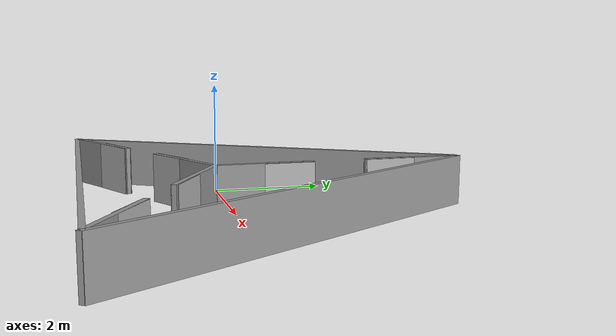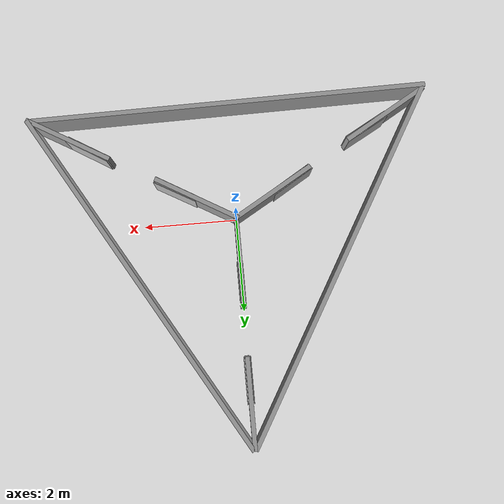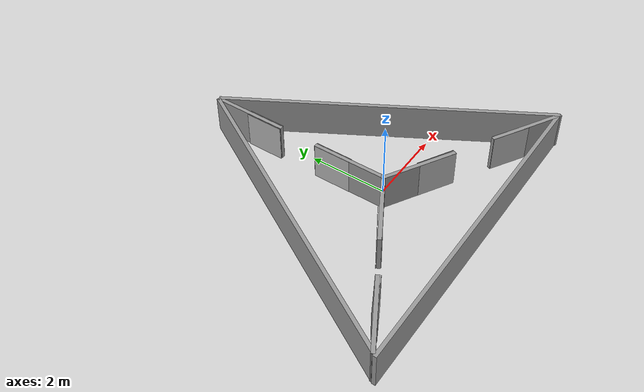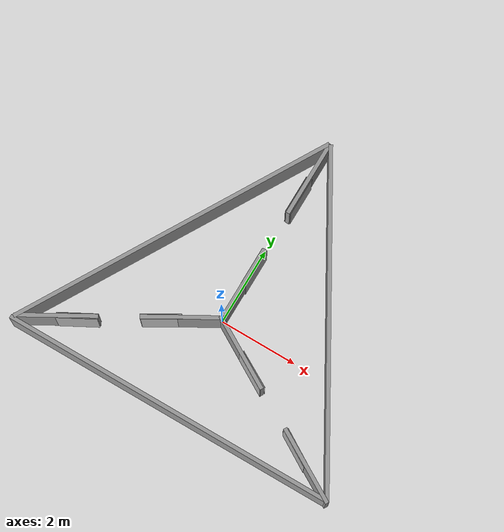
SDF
<?xml version='1.0'?>
<sdf version='1.7'>
  <model name='3_room_tagged'>
    <link name='link_1'>
      <inertial>
        <mass>1</mass>
        <inertia>
          <ixx>0.166667</ixx>
          <ixy>0</ixy>
          <ixz>0</ixz>
          <iyy>0.166667</iyy>
          <iyz>0</iyz>
          <izz>0.166667</izz>
        </inertia>
        <pose>0 0 0 0 -0 0</pose>
      </inertial>
      <pose>-0.000424 0.947771 0 0 -0 0</pose>
      <gravity>1</gravity>
      <self_collide>0</self_collide>
      <kinematic>0</kinematic>
      <enable_wind>0</enable_wind>
      <visual name='visual'>
        <pose>0 0 0 0 -0 0</pose>
        <geometry>
          <box>
            <size>0.1 2 1</size>
          </box>
        </geometry>
        <material>
          <lighting>1</lighting>
          <script>
            <uri>file://media/materials/scripts/gazebo.material</uri>
            <name>Gazebo/Grey</name>
          </script>
          <shader type='pixel'>
            <normal_map>__default__</normal_map>
          </shader>
          <ambient>0.3 0.3 0.3 1</ambient>
          <diffuse>0.7 0.7 0.7 1</diffuse>
          <specular>0.01 0.01 0.01 1</specular>
          <emissive>0 0 0 1</emissive>
        </material>
        <transparency>0</transparency>
        <cast_shadows>1</cast_shadows>
      </visual>
      <collision name='collision'>
        <laser_retro>0</laser_retro>
        <max_contacts>10</max_contacts>
        <pose>0 0 0 0 -0 0</pose>
        <geometry>
          <box>
            <size>0.1 2 1</size>
          </box>
        </geometry>
        <surface>
          <friction>
            <ode>
              <mu>1</mu>
              <mu2>1</mu2>
              <fdir1>0 0 0</fdir1>
              <slip1>0</slip1>
              <slip2>0</slip2>
            </ode>
            <torsional>
              <coefficient>1</coefficient>
              <patch_radius>0</patch_radius>
              <surface_radius>0</surface_radius>
              <use_patch_radius>1</use_patch_radius>
              <ode>
                <slip>0</slip>
              </ode>
            </torsional>
          </friction>
          <bounce>
            <restitution_coefficient>0</restitution_coefficient>
            <threshold>1e+06</threshold>
          </bounce>
          <contact>
            <collide_without_contact>0</collide_without_contact>
            <collide_without_contact_bitmask>1</collide_without_contact_bitmask>
            <collide_bitmask>1</collide_bitmask>
            <ode>
              <soft_cfm>0</soft_cfm>
              <soft_erp>0.2</soft_erp>
              <kp>1e+13</kp>
              <kd>1</kd>
              <max_vel>0.01</max_vel>
              <min_depth>0</min_depth>
            </ode>
            <bullet>
              <split_impulse>1</split_impulse>
              <split_impulse_penetration_threshold>-0.01</split_impulse_penetration_threshold>
              <soft_cfm>0</soft_cfm>
              <soft_erp>0.2</soft_erp>
              <kp>1e+13</kp>
              <kd>1</kd>
            </bullet>
          </contact>
        </surface>
      </collision>
    </link>
    <link name='link_1_clone'>
      <inertial>
        <mass>1</mass>
        <inertia>
          <ixx>0.166667</ixx>
          <ixy>0</ixy>
          <ixz>0</ixz>
          <iyy>0.166667</iyy>
          <iyz>0</iyz>
          <izz>0.166667</izz>
        </inertia>
        <pose>0 0 0 0 -0 0</pose>
      </inertial>
      <pose>0.810044 -0.484232 0.000592 0 -0 1.0472</pose>
      <gravity>1</gravity>
      <self_collide>0</self_collide>
      <kinematic>0</kinematic>
      <enable_wind>0</enable_wind>
      <visual name='visual'>
        <pose>0 0 0 0 -0 0</pose>
        <geometry>
          <box>
            <size>0.1 2 1</size>
          </box>
        </geometry>
        <material>
          <lighting>1</lighting>
          <script>
            <uri>file://media/materials/scripts/gazebo.material</uri>
            <name>Gazebo/Grey</name>
          </script>
          <shader type='pixel'>
            <normal_map>__default__</normal_map>
          </shader>
          <ambient>0.3 0.3 0.3 1</ambient>
          <diffuse>0.7 0.7 0.7 1</diffuse>
          <specular>0.01 0.01 0.01 1</specular>
          <emissive>0 0 0 1</emissive>
        </material>
        <transparency>0</transparency>
        <cast_shadows>1</cast_shadows>
      </visual>
      <collision name='collision'>
        <laser_retro>0</laser_retro>
        <max_contacts>10</max_contacts>
        <pose>0 0 0 0 -0 0</pose>
        <geometry>
          <box>
            <size>0.1 2 1</size>
          </box>
        </geometry>
        <surface>
          <friction>
            <ode>
              <mu>1</mu>
              <mu2>1</mu2>
              <fdir1>0 0 0</fdir1>
              <slip1>0</slip1>
              <slip2>0</slip2>
            </ode>
            <torsional>
              <coefficient>1</coefficient>
              <patch_radius>0</patch_radius>
              <surface_radius>0</surface_radius>
              <use_patch_radius>1</use_patch_radius>
              <ode>
                <slip>0</slip>
              </ode>
            </torsional>
          </friction>
          <bounce>
            <restitution_coefficient>0</restitution_coefficient>
            <threshold>1e+06</threshold>
          </bounce>
          <contact>
            <collide_without_contact>0</collide_without_contact>
            <collide_without_contact_bitmask>1</collide_without_contact_bitmask>
            <collide_bitmask>1</collide_bitmask>
            <ode>
              <soft_cfm>0</soft_cfm>
              <soft_erp>0.2</soft_erp>
              <kp>1e+13</kp>
              <kd>1</kd>
              <max_vel>0.01</max_vel>
              <min_depth>0</min_depth>
            </ode>
            <bullet>
              <split_impulse>1</split_impulse>
              <split_impulse_penetration_threshold>-0.01</split_impulse_penetration_threshold>
              <soft_cfm>0</soft_cfm>
              <soft_erp>0.2</soft_erp>
              <kp>1e+13</kp>
              <kd>1</kd>
            </bullet>
          </contact>
        </surface>
      </collision>
    </link>
    <link name='link_1_clone_0'>
      <inertial>
        <mass>1</mass>
        <inertia>
          <ixx>0.166667</ixx>
          <ixy>0</ixy>
          <ixz>0</ixz>
          <iyy>0.166667</iyy>
          <iyz>0</iyz>
          <izz>0.166667</izz>
        </inertia>
        <pose>0 0 0 0 -0 0</pose>
      </inertial>
      <pose>-0.820906 -0.471986 -0 -0 -0 -1.0472</pose>
      <gravity>1</gravity>
      <self_collide>0</self_collide>
      <kinematic>0</kinematic>
      <enable_wind>0</enable_wind>
      <visual name='visual'>
        <pose>0 0 0 0 -0 0</pose>
        <geometry>
          <box>
            <size>0.1 2 1</size>
          </box>
        </geometry>
        <material>
          <lighting>1</lighting>
          <script>
            <uri>file://media/materials/scripts/gazebo.material</uri>
            <name>Gazebo/Grey</name>
          </script>
          <shader type='pixel'>
            <normal_map>__default__</normal_map>
          </shader>
          <ambient>0.3 0.3 0.3 1</ambient>
          <diffuse>0.7 0.7 0.7 1</diffuse>
          <specular>0.01 0.01 0.01 1</specular>
          <emissive>0 0 0 1</emissive>
        </material>
        <transparency>0</transparency>
        <cast_shadows>1</cast_shadows>
      </visual>
      <collision name='collision'>
        <laser_retro>0</laser_retro>
        <max_contacts>10</max_contacts>
        <pose>0 0 0 0 -0 0</pose>
        <geometry>
          <box>
            <size>0.1 2 1</size>
          </box>
        </geometry>
        <surface>
          <friction>
            <ode>
              <mu>1</mu>
              <mu2>1</mu2>
              <fdir1>0 0 0</fdir1>
              <slip1>0</slip1>
              <slip2>0</slip2>
            </ode>
            <torsional>
              <coefficient>1</coefficient>
              <patch_radius>0</patch_radius>
              <surface_radius>0</surface_radius>
              <use_patch_radius>1</use_patch_radius>
              <ode>
                <slip>0</slip>
              </ode>
            </torsional>
          </friction>
          <bounce>
            <restitution_coefficient>0</restitution_coefficient>
            <threshold>1e+06</threshold>
          </bounce>
          <contact>
            <collide_without_contact>0</collide_without_contact>
            <collide_without_contact_bitmask>1</collide_without_contact_bitmask>
            <collide_bitmask>1</collide_bitmask>
            <ode>
              <soft_cfm>0</soft_cfm>
              <soft_erp>0.2</soft_erp>
              <kp>1e+13</kp>
              <kd>1</kd>
              <max_vel>0.01</max_vel>
              <min_depth>0</min_depth>
            </ode>
            <bullet>
              <split_impulse>1</split_impulse>
              <split_impulse_penetration_threshold>-0.01</split_impulse_penetration_threshold>
              <soft_cfm>0</soft_cfm>
              <soft_erp>0.2</soft_erp>
              <kp>1e+13</kp>
              <kd>1</kd>
            </bullet>
          </contact>
        </surface>
      </collision>
    </link>
    <link name='link_1_clone_1'>
      <inertial>
        <mass>1</mass>
        <inertia>
          <ixx>0.166667</ixx>
          <ixy>0</ixy>
          <ixz>0</ixz>
          <iyy>0.166667</iyy>
          <iyz>0</iyz>
          <izz>0.166667</izz>
        </inertia>
        <pose>0 0 0 0 -0 0</pose>
      </inertial>
      <pose>0.026698 3.98647 0 0 -0 0</pose>
      <gravity>1</gravity>
      <self_collide>0</self_collide>
      <kinematic>0</kinematic>
      <enable_wind>0</enable_wind>
      <visual name='visual'>
        <pose>0 0 0 0 -0 0</pose>
        <geometry>
          <box>
            <size>0.1 2 1</size>
          </box>
        </geometry>
        <material>
          <lighting>1</lighting>
          <script>
            <uri>file://media/materials/scripts/gazebo.material</uri>
            <name>Gazebo/Grey</name>
          </script>
          <shader type='pixel'>
            <normal_map>__default__</normal_map>
          </shader>
          <ambient>0.3 0.3 0.3 1</ambient>
          <diffuse>0.7 0.7 0.7 1</diffuse>
          <specular>0.01 0.01 0.01 1</specular>
          <emissive>0 0 0 1</emissive>
        </material>
        <transparency>0</transparency>
        <cast_shadows>1</cast_shadows>
      </visual>
      <collision name='collision'>
        <laser_retro>0</laser_retro>
        <max_contacts>10</max_contacts>
        <pose>0 0 0 0 -0 0</pose>
        <geometry>
          <box>
            <size>0.1 2 1</size>
          </box>
        </geometry>
        <surface>
          <friction>
            <ode>
              <mu>1</mu>
              <mu2>1</mu2>
              <fdir1>0 0 0</fdir1>
              <slip1>0</slip1>
              <slip2>0</slip2>
            </ode>
            <torsional>
              <coefficient>1</coefficient>
              <patch_radius>0</patch_radius>
              <surface_radius>0</surface_radius>
              <use_patch_radius>1</use_patch_radius>
              <ode>
                <slip>0</slip>
              </ode>
            </torsional>
          </friction>
          <bounce>
            <restitution_coefficient>0</restitution_coefficient>
            <threshold>1e+06</threshold>
          </bounce>
          <contact>
            <collide_without_contact>0</collide_without_contact>
            <collide_without_contact_bitmask>1</collide_without_contact_bitmask>
            <collide_bitmask>1</collide_bitmask>
            <ode>
              <soft_cfm>0</soft_cfm>
              <soft_erp>0.2</soft_erp>
              <kp>1e+13</kp>
              <kd>1</kd>
              <max_vel>0.01</max_vel>
              <min_depth>0</min_depth>
            </ode>
            <bullet>
              <split_impulse>1</split_impulse>
              <split_impulse_penetration_threshold>-0.01</split_impulse_penetration_threshold>
              <soft_cfm>0</soft_cfm>
              <soft_erp>0.2</soft_erp>
              <kp>1e+13</kp>
              <kd>1</kd>
            </bullet>
          </contact>
        </surface>
      </collision>
    </link>
    <link name='link_1_clone_2'>
      <inertial>
        <mass>4.30688</mass>
        <inertia>
          <ixx>26.9889</ixx>
          <ixy>0</ixy>
          <ixz>0</ixz>
          <iyy>0.362496</iyy>
          <iyz>0</iyz>
          <izz>26.6336</izz>
        </inertia>
        <pose>0 0 0 0 -0 0</pose>
      </inertial>
      <pose>-2.12522 1.24153 0 0 0 -0.518643</pose>
      <gravity>1</gravity>
      <self_collide>0</self_collide>
      <kinematic>0</kinematic>
      <enable_wind>0</enable_wind>
      <visual name='visual'>
        <pose>0 0 0 0 -0 0</pose>
        <geometry>
          <box>
            <size>0.1 8.61379 1</size>
          </box>
        </geometry>
        <material>
          <lighting>1</lighting>
          <script>
            <uri>file://media/materials/scripts/gazebo.material</uri>
            <name>Gazebo/Grey</name>
          </script>
          <shader type='pixel'>
            <normal_map>__default__</normal_map>
          </shader>
          <ambient>0.3 0.3 0.3 1</ambient>
          <diffuse>0.7 0.7 0.7 1</diffuse>
          <specular>0.01 0.01 0.01 1</specular>
          <emissive>0 0 0 1</emissive>
        </material>
        <transparency>0</transparency>
        <cast_shadows>1</cast_shadows>
      </visual>
      <collision name='collision'>
        <laser_retro>0</laser_retro>
        <max_contacts>10</max_contacts>
        <pose>0 0 0 0 -0 0</pose>
        <geometry>
          <box>
            <size>0.1 8.61379 1</size>
          </box>
        </geometry>
        <surface>
          <friction>
            <ode>
              <mu>1</mu>
              <mu2>1</mu2>
              <fdir1>0 0 0</fdir1>
              <slip1>0</slip1>
              <slip2>0</slip2>
            </ode>
            <torsional>
              <coefficient>1</coefficient>
              <patch_radius>0</patch_radius>
              <surface_radius>0</surface_radius>
              <use_patch_radius>1</use_patch_radius>
              <ode>
                <slip>0</slip>
              </ode>
            </torsional>
          </friction>
          <bounce>
            <restitution_coefficient>0</restitution_coefficient>
            <threshold>1e+06</threshold>
          </bounce>
          <contact>
            <collide_without_contact>0</collide_without_contact>
            <collide_without_contact_bitmask>1</collide_without_contact_bitmask>
            <collide_bitmask>1</collide_bitmask>
            <ode>
              <soft_cfm>0</soft_cfm>
              <soft_erp>0.2</soft_erp>
              <kp>1e+13</kp>
              <kd>1</kd>
              <max_vel>0.01</max_vel>
              <min_depth>0</min_depth>
            </ode>
            <bullet>
              <split_impulse>1</split_impulse>
              <split_impulse_penetration_threshold>-0.01</split_impulse_penetration_threshold>
              <soft_cfm>0</soft_cfm>
              <soft_erp>0.2</soft_erp>
              <kp>1e+13</kp>
              <kd>1</kd>
            </bullet>
          </contact>
        </surface>
      </collision>
    </link>
    <link name='link_1_clone_2_clone'>
      <inertial>
        <mass>4.30688</mass>
        <inertia>
          <ixx>26.9889</ixx>
          <ixy>0</ixy>
          <ixz>0</ixz>
          <iyy>0.362496</iyy>
          <iyz>0</iyz>
          <izz>26.6336</izz>
        </inertia>
        <pose>0 0 0 0 -0 0</pose>
      </inertial>
      <pose>2.18969 1.25037 0 0 0 -2.6209</pose>
      <gravity>1</gravity>
      <self_collide>0</self_collide>
      <kinematic>0</kinematic>
      <enable_wind>0</enable_wind>
      <visual name='visual'>
        <pose>0 0 0 0 -0 0</pose>
        <geometry>
          <box>
            <size>0.1 8.61379 1</size>
          </box>
        </geometry>
        <material>
          <lighting>1</lighting>
          <script>
            <uri>file://media/materials/scripts/gazebo.material</uri>
            <name>Gazebo/Grey</name>
          </script>
          <shader type='pixel'>
            <normal_map>__default__</normal_map>
          </shader>
          <ambient>0.3 0.3 0.3 1</ambient>
          <diffuse>0.7 0.7 0.7 1</diffuse>
          <specular>0.01 0.01 0.01 1</specular>
          <emissive>0 0 0 1</emissive>
        </material>
        <transparency>0</transparency>
        <cast_shadows>1</cast_shadows>
      </visual>
      <collision name='collision'>
        <laser_retro>0</laser_retro>
        <max_contacts>10</max_contacts>
        <pose>0 0 0 0 -0 0</pose>
        <geometry>
          <box>
            <size>0.1 8.61379 1</size>
          </box>
        </geometry>
        <surface>
          <friction>
            <ode>
              <mu>1</mu>
              <mu2>1</mu2>
              <fdir1>0 0 0</fdir1>
              <slip1>0</slip1>
              <slip2>0</slip2>
            </ode>
            <torsional>
              <coefficient>1</coefficient>
              <patch_radius>0</patch_radius>
              <surface_radius>0</surface_radius>
              <use_patch_radius>1</use_patch_radius>
              <ode>
                <slip>0</slip>
              </ode>
            </torsional>
          </friction>
          <bounce>
            <restitution_coefficient>0</restitution_coefficient>
            <threshold>1e+06</threshold>
          </bounce>
          <contact>
            <collide_without_contact>0</collide_without_contact>
            <collide_without_contact_bitmask>1</collide_without_contact_bitmask>
            <collide_bitmask>1</collide_bitmask>
            <ode>
              <soft_cfm>0</soft_cfm>
              <soft_erp>0.2</soft_erp>
              <kp>1e+13</kp>
              <kd>1</kd>
              <max_vel>0.01</max_vel>
              <min_depth>0</min_depth>
            </ode>
            <bullet>
              <split_impulse>1</split_impulse>
              <split_impulse_penetration_threshold>-0.01</split_impulse_penetration_threshold>
              <soft_cfm>0</soft_cfm>
              <soft_erp>0.2</soft_erp>
              <kp>1e+13</kp>
              <kd>1</kd>
            </bullet>
          </contact>
        </surface>
      </collision>
    </link>
    <link name='link_1_clone_2_clone_0'>
      <inertial>
        <mass>4.30688</mass>
        <inertia>
          <ixx>26.9889</ixx>
          <ixy>0</ixy>
          <ixz>0</ixz>
          <iyy>0.362496</iyy>
          <iyz>0</iyz>
          <izz>26.6336</izz>
        </inertia>
        <pose>0 0 0 0 -0 0</pose>
      </inertial>
      <pose>-0.010795 -2.50007 -0 0 -0 1.57952</pose>
      <gravity>1</gravity>
      <self_collide>0</self_collide>
      <kinematic>0</kinematic>
      <enable_wind>0</enable_wind>
      <visual name='visual'>
        <pose>0 0 0 0 -0 0</pose>
        <geometry>
          <box>
            <size>0.1 8.61379 1</size>
          </box>
        </geometry>
        <material>
          <lighting>1</lighting>
          <script>
            <uri>file://media/materials/scripts/gazebo.material</uri>
            <name>Gazebo/Grey</name>
          </script>
          <shader type='pixel'>
            <normal_map>__default__</normal_map>
          </shader>
          <ambient>0.3 0.3 0.3 1</ambient>
          <diffuse>0.7 0.7 0.7 1</diffuse>
          <specular>0.01 0.01 0.01 1</specular>
          <emissive>0 0 0 1</emissive>
        </material>
        <transparency>0</transparency>
        <cast_shadows>1</cast_shadows>
      </visual>
      <collision name='collision'>
        <laser_retro>0</laser_retro>
        <max_contacts>10</max_contacts>
        <pose>0 0 0 0 -0 0</pose>
        <geometry>
          <box>
            <size>0.1 8.61379 1</size>
          </box>
        </geometry>
        <surface>
          <friction>
            <ode>
              <mu>1</mu>
              <mu2>1</mu2>
              <fdir1>0 0 0</fdir1>
              <slip1>0</slip1>
              <slip2>0</slip2>
            </ode>
            <torsional>
              <coefficient>1</coefficient>
              <patch_radius>0</patch_radius>
              <surface_radius>0</surface_radius>
              <use_patch_radius>1</use_patch_radius>
              <ode>
                <slip>0</slip>
              </ode>
            </torsional>
          </friction>
          <bounce>
            <restitution_coefficient>0</restitution_coefficient>
            <threshold>1e+06</threshold>
          </bounce>
          <contact>
            <collide_without_contact>0</collide_without_contact>
            <collide_without_contact_bitmask>1</collide_without_contact_bitmask>
            <collide_bitmask>1</collide_bitmask>
            <ode>
              <soft_cfm>0</soft_cfm>
              <soft_erp>0.2</soft_erp>
              <kp>1e+13</kp>
              <kd>1</kd>
              <max_vel>0.01</max_vel>
              <min_depth>0</min_depth>
            </ode>
            <bullet>
              <split_impulse>1</split_impulse>
              <split_impulse_penetration_threshold>-0.01</split_impulse_penetration_threshold>
              <soft_cfm>0</soft_cfm>
              <soft_erp>0.2</soft_erp>
              <kp>1e+13</kp>
              <kd>1</kd>
            </bullet>
          </contact>
        </surface>
      </collision>
    </link>
    <link name='link_1_clone_clone'>
      <inertial>
        <mass>1</mass>
        <inertia>
          <ixx>0.166667</ixx>
          <ixy>0</ixy>
          <ixz>0</ixz>
          <iyy>0.166667</iyy>
          <iyz>0</iyz>
          <izz>0.166667</izz>
        </inertia>
        <pose>0 0 0 0 -0 0</pose>
      </inertial>
      <pose>3.47972 -1.99977 -0 0 -0 1.0472</pose>
      <gravity>1</gravity>
      <self_collide>0</self_collide>
      <kinematic>0</kinematic>
      <enable_wind>0</enable_wind>
      <visual name='visual'>
        <pose>0 0 0 0 -0 0</pose>
        <geometry>
          <box>
            <size>0.1 2 1</size>
          </box>
        </geometry>
        <material>
          <lighting>1</lighting>
          <script>
            <uri>file://media/materials/scripts/gazebo.material</uri>
            <name>Gazebo/Grey</name>
          </script>
          <shader type='pixel'>
            <normal_map>__default__</normal_map>
          </shader>
          <ambient>0.3 0.3 0.3 1</ambient>
          <diffuse>0.7 0.7 0.7 1</diffuse>
          <specular>0.01 0.01 0.01 1</specular>
          <emissive>0 0 0 1</emissive>
        </material>
        <transparency>0</transparency>
        <cast_shadows>1</cast_shadows>
      </visual>
      <collision name='collision'>
        <laser_retro>0</laser_retro>
        <max_contacts>10</max_contacts>
        <pose>0 0 0 0 -0 0</pose>
        <geometry>
          <box>
            <size>0.1 2 1</size>
          </box>
        </geometry>
        <surface>
          <friction>
            <ode>
              <mu>1</mu>
              <mu2>1</mu2>
              <fdir1>0 0 0</fdir1>
              <slip1>0</slip1>
              <slip2>0</slip2>
            </ode>
            <torsional>
              <coefficient>1</coefficient>
              <patch_radius>0</patch_radius>
              <surface_radius>0</surface_radius>
              <use_patch_radius>1</use_patch_radius>
              <ode>
                <slip>0</slip>
              </ode>
            </torsional>
          </friction>
          <bounce>
            <restitution_coefficient>0</restitution_coefficient>
            <threshold>1e+06</threshold>
          </bounce>
          <contact>
            <collide_without_contact>0</collide_without_contact>
            <collide_without_contact_bitmask>1</collide_without_contact_bitmask>
            <collide_bitmask>1</collide_bitmask>
            <ode>
              <soft_cfm>0</soft_cfm>
              <soft_erp>0.2</soft_erp>
              <kp>1e+13</kp>
              <kd>1</kd>
              <max_vel>0.01</max_vel>
              <min_depth>0</min_depth>
            </ode>
            <bullet>
              <split_impulse>1</split_impulse>
              <split_impulse_penetration_threshold>-0.01</split_impulse_penetration_threshold>
              <soft_cfm>0</soft_cfm>
              <soft_erp>0.2</soft_erp>
              <kp>1e+13</kp>
              <kd>1</kd>
            </bullet>
          </contact>
        </surface>
      </collision>
    </link>
    <link name='link_1_clone_clone_0'>
      <inertial>
        <mass>1</mass>
        <inertia>
          <ixx>0.166667</ixx>
          <ixy>0</ixy>
          <ixz>0</ixz>
          <iyy>0.166667</iyy>
          <iyz>0</iyz>
          <izz>0.166667</izz>
        </inertia>
        <pose>0 0 0 0 -0 0</pose>
      </inertial>
      <pose>-3.40539 -1.97123 0 -0 -0 -1.0472</pose>
      <gravity>1</gravity>
      <self_collide>0</self_collide>
      <kinematic>0</kinematic>
      <enable_wind>0</enable_wind>
      <visual name='visual'>
        <pose>0 0 0 0 -0 0</pose>
        <geometry>
          <box>
            <size>0.1 2 1</size>
          </box>
        </geometry>
        <material>
          <lighting>1</lighting>
          <script>
            <uri>file://media/materials/scripts/gazebo.material</uri>
            <name>Gazebo/Grey</name>
          </script>
          <shader type='pixel'>
            <normal_map>__default__</normal_map>
          </shader>
          <ambient>0.3 0.3 0.3 1</ambient>
          <diffuse>0.7 0.7 0.7 1</diffuse>
          <specular>0.01 0.01 0.01 1</specular>
          <emissive>0 0 0 1</emissive>
        </material>
        <transparency>0</transparency>
        <cast_shadows>1</cast_shadows>
      </visual>
      <collision name='collision'>
        <laser_retro>0</laser_retro>
        <max_contacts>10</max_contacts>
        <pose>0 0 0 0 -0 0</pose>
        <geometry>
          <box>
            <size>0.1 2 1</size>
          </box>
        </geometry>
        <surface>
          <friction>
            <ode>
              <mu>1</mu>
              <mu2>1</mu2>
              <fdir1>0 0 0</fdir1>
              <slip1>0</slip1>
              <slip2>0</slip2>
            </ode>
            <torsional>
              <coefficient>1</coefficient>
              <patch_radius>0</patch_radius>
              <surface_radius>0</surface_radius>
              <use_patch_radius>1</use_patch_radius>
              <ode>
                <slip>0</slip>
              </ode>
            </torsional>
          </friction>
          <bounce>
            <restitution_coefficient>0</restitution_coefficient>
            <threshold>1e+06</threshold>
          </bounce>
          <contact>
            <collide_without_contact>0</collide_without_contact>
            <collide_without_contact_bitmask>1</collide_without_contact_bitmask>
            <collide_bitmask>1</collide_bitmask>
            <ode>
              <soft_cfm>0</soft_cfm>
              <soft_erp>0.2</soft_erp>
              <kp>1e+13</kp>
              <kd>1</kd>
              <max_vel>0.01</max_vel>
              <min_depth>0</min_depth>
            </ode>
            <bullet>
              <split_impulse>1</split_impulse>
              <split_impulse_penetration_threshold>-0.01</split_impulse_penetration_threshold>
              <soft_cfm>0</soft_cfm>
              <soft_erp>0.2</soft_erp>
              <kp>1e+13</kp>
              <kd>1</kd>
            </bullet>
          </contact>
        </surface>
      </collision>
    </link>
    <model name='Apriltag36_11_00000'>
      <link name='main'>
        <pose>0 0 0 0 -0 0</pose>
        <visual name='main_Visual'>
          <geometry>
            <box>
              <size>1 1 0.01</size>
            </box>
          </geometry>
          <material>
            <script>
              <uri>model://Apriltag36_11_00000/materials/scripts</uri>
              <uri>model://Apriltag36_11_00000/materials/textures</uri>
              <name>Apriltag36_11_00000</name>
            </script>
          </material>
        </visual>
        <self_collide>0</self_collide>
        <enable_wind>0</enable_wind>
        <kinematic>0</kinematic>
      </link>
      <static>1</static>
      <pose>3.10184 -1.71745 0 -1.5708 -0 -0.544394</pose>
    </model>
    <model name='Apriltag36_11_00001'>
      <link name='main'>
        <pose>0 0 0 0 -0 0</pose>
        <visual name='main_Visual'>
          <geometry>
            <box>
              <size>1 1 0.01</size>
            </box>
          </geometry>
          <material>
            <script>
              <uri>model://Apriltag36_11_00001/materials/scripts</uri>
              <uri>model://Apriltag36_11_00001/materials/textures</uri>
              <name>Apriltag36_11_00001</name>
            </script>
          </material>
        </visual>
        <self_collide>0</self_collide>
        <enable_wind>0</enable_wind>
        <kinematic>0</kinematic>
      </link>
      <static>1</static>
      <pose>1.27872 -0.667041 0 2.08715 1.57079 -3.1381</pose>
    </model>
    <model name='Apriltag36_11_00002'>
      <link name='main'>
        <pose>0 0 0 0 -0 0</pose>
        <visual name='main_Visual'>
          <geometry>
            <box>
              <size>1 1 0.01</size>
            </box>
          </geometry>
          <material>
            <script>
              <uri>model://Apriltag36_11_00002/materials/scripts</uri>
              <uri>model://Apriltag36_11_00002/materials/textures</uri>
              <name>Apriltag36_11_00002</name>
            </script>
          </material>
        </visual>
        <self_collide>0</self_collide>
        <enable_wind>0</enable_wind>
        <kinematic>0</kinematic>
      </link>
      <static>1</static>
      <pose>0.069291 1.44484 -0.006277 3.14105 1.57079 3.14105</pose>
    </model>
    <model name='Apriltag36_11_00003'>
      <link name='main'>
        <pose>0 0 0 0 -0 0</pose>
        <visual name='main_Visual'>
          <geometry>
            <box>
              <size>1 1 0.01</size>
            </box>
          </geometry>
          <material>
            <script>
              <uri>model://Apriltag36_11_00003/materials/scripts</uri>
              <uri>model://Apriltag36_11_00003/materials/textures</uri>
              <name>Apriltag36_11_00003</name>
            </script>
          </material>
        </visual>
        <self_collide>0</self_collide>
        <enable_wind>0</enable_wind>
        <kinematic>0</kinematic>
      </link>
      <static>1</static>
      <pose>0.099224 3.50225 -0 -0.000233 1.57079 -0.000233</pose>
    </model>
    <model name='Apriltag36_11_00004'>
      <link name='main'>
        <pose>0 0 0 0 -0 0</pose>
        <visual name='main_Visual'>
          <geometry>
            <box>
              <size>1 1 0.01</size>
            </box>
          </geometry>
          <material>
            <script>
              <uri>model://Apriltag36_11_00004/materials/scripts</uri>
              <uri>model://Apriltag36_11_00004/materials/textures</uri>
              <name>Apriltag36_11_00004</name>
            </script>
          </material>
        </visual>
        <self_collide>0</self_collide>
        <enable_wind>0</enable_wind>
        <kinematic>0</kinematic>
      </link>
      <static>1</static>
      <pose>-0.046639 3.49134 0 -3.14127 -1.57079 3.14126</pose>
    </model>
    <model name='Apriltag36_11_00005'>
      <link name='main'>
        <pose>0 0 0 0 -0 0</pose>
        <visual name='main_Visual'>
          <geometry>
            <box>
              <size>1 1 0.01</size>
            </box>
          </geometry>
          <material>
            <script>
              <uri>model://Apriltag36_11_00005/materials/scripts</uri>
              <uri>model://Apriltag36_11_00005/materials/textures</uri>
              <name>Apriltag36_11_00005</name>
            </script>
          </material>
        </visual>
        <self_collide>0</self_collide>
        <enable_wind>0</enable_wind>
        <kinematic>0</kinematic>
      </link>
      <static>1</static>
      <pose>-0.051672 1.43988 -0 -3.14127 -1.57079 3.14126</pose>
    </model>
    <model name='Apriltag36_11_00006'>
      <link name='main'>
        <pose>0 0 0 0 -0 0</pose>
        <visual name='main_Visual'>
          <geometry>
            <box>
              <size>1 1 0.01</size>
            </box>
          </geometry>
          <material>
            <script>
              <uri>model://Apriltag36_11_00006/materials/scripts</uri>
              <uri>model://Apriltag36_11_00006/materials/textures</uri>
              <name>Apriltag36_11_00006</name>
            </script>
          </material>
        </visual>
        <self_collide>0</self_collide>
        <enable_wind>0</enable_wind>
        <kinematic>0</kinematic>
      </link>
      <static>1</static>
      <pose>-1.2991 -0.665588 -0 -1.5708 -0 0.541517</pose>
    </model>
    <model name='Apriltag36_11_00007'>
      <link name='main'>
        <pose>0 0 0 0 -0 0</pose>
        <visual name='main_Visual'>
          <geometry>
            <box>
              <size>1 1 0.01</size>
            </box>
          </geometry>
          <material>
            <script>
              <uri>model://Apriltag36_11_00007/materials/scripts</uri>
              <uri>model://Apriltag36_11_00007/materials/textures</uri>
              <name>Apriltag36_11_00007</name>
            </script>
          </material>
        </visual>
        <self_collide>0</self_collide>
        <enable_wind>0</enable_wind>
        <kinematic>0</kinematic>
      </link>
      <static>1</static>
      <pose>-2.9958 -1.66095 0 -1.5708 0 0.498541</pose>
    </model>
    <model name='Apriltag36_11_00008'>
      <link name='main'>
        <pose>0 0 0 0 -0 0</pose>
        <visual name='main_Visual'>
          <geometry>
            <box>
              <size>1 1 0.01</size>
            </box>
          </geometry>
          <material>
            <script>
              <uri>model://Apriltag36_11_00008/materials/scripts</uri>
              <uri>model://Apriltag36_11_00008/materials/textures</uri>
              <name>Apriltag36_11_00008</name>
            </script>
          </material>
        </visual>
        <self_collide>0</self_collide>
        <enable_wind>0</enable_wind>
        <kinematic>0</kinematic>
      </link>
      <static>1</static>
      <pose>-2.95208 -1.78609 -0 1.00709 1.57079 -0.063577</pose>
    </model>
    <model name='Apriltag36_11_00009'>
      <link name='main'>
        <pose>0 0 0 0 -0 0</pose>
        <visual name='main_Visual'>
          <geometry>
            <box>
              <size>1 1 0.01</size>
            </box>
          </geometry>
          <material>
            <script>
              <uri>model://Apriltag36_11_00009/materials/scripts</uri>
              <uri>model://Apriltag36_11_00009/materials/textures</uri>
              <name>Apriltag36_11_00009</name>
            </script>
          </material>
        </visual>
        <self_collide>0</self_collide>
        <enable_wind>0</enable_wind>
        <kinematic>0</kinematic>
      </link>
      <static>1</static>
      <pose>-1.21581 -0.759279 -0 1.5708 -0 0.54068</pose>
    </model>
    <model name='Apriltag36_11_00010'>
      <link name='main'>
        <pose>0 0 0 0 -0 0</pose>
        <visual name='main_Visual'>
          <geometry>
            <box>
              <size>1 1 0.01</size>
            </box>
          </geometry>
          <material>
            <script>
              <uri>model://Apriltag36_11_00010/materials/scripts</uri>
              <uri>model://Apriltag36_11_00010/materials/textures</uri>
              <name>Apriltag36_11_00010</name>
            </script>
          </material>
        </visual>
        <self_collide>0</self_collide>
        <enable_wind>0</enable_wind>
        <kinematic>0</kinematic>
      </link>
      <static>1</static>
      <pose>1.22049 -0.776628 -0 1.5708 -0 -0.524739</pose>
    </model>
    <model name='Apriltag36_11_00011'>
      <link name='main'>
        <pose>0 0 0 0 -0 0</pose>
        <visual name='main_Visual'>
          <geometry>
            <box>
              <size>1 1 0.01</size>
            </box>
          </geometry>
          <material>
            <script>
              <uri>model://Apriltag36_11_00011/materials/scripts</uri>
              <uri>model://Apriltag36_11_00011/materials/textures</uri>
              <name>Apriltag36_11_00011</name>
            </script>
          </material>
        </visual>
        <self_collide>0</self_collide>
        <enable_wind>0</enable_wind>
        <kinematic>0</kinematic>
      </link>
      <static>1</static>
      <pose>3.02998 -1.80257 -0 1.5708 -0 -0.537969</pose>
    </model>
    <joint name='link_1_JOINT_12' type='fixed'>
      <parent>link_1</parent>
      <child>Apriltag36_11_00002::main</child>
      <pose>0 0 0 0 -0 0</pose>
      <physics>
        <ode>
          <limit>
            <cfm>0</cfm>
            <erp>0.2</erp>
          </limit>
          <suspension>
            <cfm>0</cfm>
            <erp>0.2</erp>
          </suspension>
        </ode>
      </physics>
    </joint>
    <joint name='link_1_JOINT_15' type='fixed'>
      <parent>link_1</parent>
      <child>Apriltag36_11_00005::main</child>
      <pose>0 0 0 0 -0 0</pose>
      <physics>
        <ode>
          <limit>
            <cfm>0</cfm>
            <erp>0.2</erp>
          </limit>
          <suspension>
            <cfm>0</cfm>
            <erp>0.2</erp>
          </suspension>
        </ode>
      </physics>
    </joint>
    <joint name='link_1_JOINT_4' type='fixed'>
      <parent>link_1</parent>
      <child>link_1_clone_2</child>
      <pose>0 0 0 0 -0 0</pose>
      <physics>
        <ode>
          <limit>
            <cfm>0</cfm>
            <erp>0.2</erp>
          </limit>
          <suspension>
            <cfm>0</cfm>
            <erp>0.2</erp>
          </suspension>
        </ode>
      </physics>
    </joint>
    <joint name='link_1_JOINT_5' type='fixed'>
      <parent>link_1</parent>
      <child>link_1_clone_2_clone</child>
      <pose>0 0 0 0 -0 0</pose>
      <physics>
        <ode>
          <limit>
            <cfm>0</cfm>
            <erp>0.2</erp>
          </limit>
          <suspension>
            <cfm>0</cfm>
            <erp>0.2</erp>
          </suspension>
        </ode>
      </physics>
    </joint>
    <joint name='link_1_clone_0_JOINT_16' type='fixed'>
      <parent>link_1_clone_0</parent>
      <child>Apriltag36_11_00006::main</child>
      <pose>0 0 0 0 -0 0</pose>
      <physics>
        <ode>
          <limit>
            <cfm>0</cfm>
            <erp>0.2</erp>
          </limit>
          <suspension>
            <cfm>0</cfm>
            <erp>0.2</erp>
          </suspension>
        </ode>
      </physics>
    </joint>
    <joint name='link_1_clone_0_JOINT_3' type='fixed'>
      <parent>link_1_clone_0</parent>
      <child>link_1_clone_2</child>
      <pose>0 0 0 0 -0 0</pose>
      <physics>
        <ode>
          <limit>
            <cfm>0</cfm>
            <erp>0.2</erp>
          </limit>
          <suspension>
            <cfm>0</cfm>
            <erp>0.2</erp>
          </suspension>
        </ode>
      </physics>
    </joint>
    <joint name='link_1_clone_0_JOINT_8' type='fixed'>
      <parent>link_1_clone_0</parent>
      <child>link_1_clone_2_clone_0</child>
      <pose>0 0 0 0 -0 0</pose>
      <physics>
        <ode>
          <limit>
            <cfm>0</cfm>
            <erp>0.2</erp>
          </limit>
          <suspension>
            <cfm>0</cfm>
            <erp>0.2</erp>
          </suspension>
        </ode>
      </physics>
    </joint>
    <joint name='link_1_clone_1_JOINT_14' type='fixed'>
      <parent>link_1_clone_1</parent>
      <child>Apriltag36_11_00004::main</child>
      <pose>0 0 0 0 -0 0</pose>
      <physics>
        <ode>
          <limit>
            <cfm>0</cfm>
            <erp>0.2</erp>
          </limit>
          <suspension>
            <cfm>0</cfm>
            <erp>0.2</erp>
          </suspension>
        </ode>
      </physics>
    </joint>
    <joint name='link_1_clone_2_JOINT_0' type='fixed'>
      <parent>link_1_clone_2</parent>
      <child>link_1_clone_2_clone_0</child>
      <pose>0 0 0 0 -0 0</pose>
      <physics>
        <ode>
          <limit>
            <cfm>0</cfm>
            <erp>0.2</erp>
          </limit>
          <suspension>
            <cfm>0</cfm>
            <erp>0.2</erp>
          </suspension>
        </ode>
      </physics>
    </joint>
    <joint name='link_1_clone_2_JOINT_13' type='fixed'>
      <parent>link_1_clone_2</parent>
      <child>link_1_clone_1</child>
      <pose>0 0 0 0 -0 0</pose>
      <physics>
        <ode>
          <limit>
            <cfm>0</cfm>
            <erp>0.2</erp>
          </limit>
          <suspension>
            <cfm>0</cfm>
            <erp>0.2</erp>
          </suspension>
        </ode>
      </physics>
    </joint>
    <joint name='link_1_clone_2_JOINT_9' type='fixed'>
      <parent>link_1_clone_2</parent>
      <child>link_1_clone_clone_0</child>
      <pose>0 0 0 0 -0 0</pose>
      <physics>
        <ode>
          <limit>
            <cfm>0</cfm>
            <erp>0.2</erp>
          </limit>
          <suspension>
            <cfm>0</cfm>
            <erp>0.2</erp>
          </suspension>
        </ode>
      </physics>
    </joint>
    <joint name='link_1_clone_2_clone_0_JOINT_10' type='fixed'>
      <parent>link_1_clone_2_clone_0</parent>
      <child>link_1_clone_clone_0</child>
      <pose>0 0 0 0 -0 0</pose>
      <physics>
        <ode>
          <limit>
            <cfm>0</cfm>
            <erp>0.2</erp>
          </limit>
          <suspension>
            <cfm>0</cfm>
            <erp>0.2</erp>
          </suspension>
        </ode>
      </physics>
    </joint>
    <joint name='link_1_clone_2_clone_0_JOINT_11' type='fixed'>
      <parent>link_1_clone_2_clone_0</parent>
      <child>link_1_clone_clone</child>
      <pose>0 0 0 0 -0 0</pose>
      <physics>
        <ode>
          <limit>
            <cfm>0</cfm>
            <erp>0.2</erp>
          </limit>
          <suspension>
            <cfm>0</cfm>
            <erp>0.2</erp>
          </suspension>
        </ode>
      </physics>
    </joint>
    <joint name='link_1_clone_2_clone_0_JOINT_1' type='fixed'>
      <parent>link_1_clone_2_clone_0</parent>
      <child>link_1_clone_2_clone</child>
      <pose>0 0 0 0 -0 0</pose>
      <physics>
        <ode>
          <limit>
            <cfm>0</cfm>
            <erp>0.2</erp>
          </limit>
          <suspension>
            <cfm>0</cfm>
            <erp>0.2</erp>
          </suspension>
        </ode>
      </physics>
    </joint>
    <joint name='link_1_clone_2_clone_JOINT_12' type='revolute'>
      <parent>link_1_clone_2_clone</parent>
      <child>link_1_clone_clone</child>
      <pose>0 0 0 0 -0 0</pose>
      <axis>
        <xyz>1 0 0</xyz>
        <limit>
          <lower>-1.79769e+308</lower>
          <upper>1.79769e+308</upper>
          <effort>-1</effort>
          <velocity>-1</velocity>
        </limit>
        <dynamics>
          <spring_reference>0</spring_reference>
          <spring_stiffness>0</spring_stiffness>
          <damping>0</damping>
        </dynamics>
      </axis>
      <physics>
        <ode>
          <limit>
            <cfm>0</cfm>
            <erp>0.2</erp>
          </limit>
          <suspension>
            <cfm>0</cfm>
            <erp>0.2</erp>
          </suspension>
        </ode>
      </physics>
    </joint>
    <joint name='link_1_clone_2_clone_JOINT_14' type='fixed'>
      <parent>link_1_clone_2_clone</parent>
      <child>link_1_clone_1</child>
      <pose>0 0 0 0 -0 0</pose>
      <physics>
        <ode>
          <limit>
            <cfm>0</cfm>
            <erp>0.2</erp>
          </limit>
          <suspension>
            <cfm>0</cfm>
            <erp>0.2</erp>
          </suspension>
        </ode>
      </physics>
    </joint>
    <joint name='link_1_clone_2_clone_JOINT_2' type='fixed'>
      <parent>link_1_clone_2_clone</parent>
      <child>link_1_clone_2</child>
      <pose>0 0 0 0 -0 0</pose>
      <physics>
        <ode>
          <limit>
            <cfm>0</cfm>
            <erp>0.2</erp>
          </limit>
          <suspension>
            <cfm>0</cfm>
            <erp>0.2</erp>
          </suspension>
        </ode>
      </physics>
    </joint>
    <joint name='link_1_clone_JOINT_6' type='fixed'>
      <parent>link_1_clone</parent>
      <child>link_1_clone_2_clone</child>
      <pose>0 0 0 0 -0 0</pose>
      <physics>
        <ode>
          <limit>
            <cfm>0</cfm>
            <erp>0.2</erp>
          </limit>
          <suspension>
            <cfm>0</cfm>
            <erp>0.2</erp>
          </suspension>
        </ode>
      </physics>
    </joint>
    <joint name='link_1_clone_JOINT_7' type='fixed'>
      <parent>link_1_clone</parent>
      <child>link_1_clone_2_clone_0</child>
      <pose>0 0 0 0 -0 0</pose>
      <physics>
        <ode>
          <limit>
            <cfm>0</cfm>
            <erp>0.2</erp>
          </limit>
          <suspension>
            <cfm>0</cfm>
            <erp>0.2</erp>
          </suspension>
        </ode>
      </physics>
    </joint>
    <joint name='main_JOINT_10' type='fixed'>
      <parent>Apriltag36_11_00001::main</parent>
      <child>link_1_clone</child>
      <pose>0 0 0 0 -0 0</pose>
      <physics>
        <ode>
          <limit>
            <cfm>0</cfm>
            <erp>0.2</erp>
          </limit>
          <suspension>
            <cfm>0</cfm>
            <erp>0.2</erp>
          </suspension>
        </ode>
      </physics>
    </joint>
    <joint name='main_JOINT_11' type='fixed'>
      <parent>Apriltag36_11_00000::main</parent>
      <child>link_1_clone_clone</child>
      <pose>0 0 0 0 -0 0</pose>
      <physics>
        <ode>
          <limit>
            <cfm>0</cfm>
            <erp>0.2</erp>
          </limit>
          <suspension>
            <cfm>0</cfm>
            <erp>0.2</erp>
          </suspension>
        </ode>
      </physics>
    </joint>
    <joint name='main_JOINT_13' type='fixed'>
      <parent>Apriltag36_11_00003::main</parent>
      <child>link_1_clone_1</child>
      <pose>0 0 0 0 -0 0</pose>
      <physics>
        <ode>
          <limit>
            <cfm>0</cfm>
            <erp>0.2</erp>
          </limit>
          <suspension>
            <cfm>0</cfm>
            <erp>0.2</erp>
          </suspension>
        </ode>
      </physics>
    </joint>
    <joint name='main_JOINT_17' type='fixed'>
      <parent>Apriltag36_11_00007::main</parent>
      <child>link_1_clone_clone_0</child>
      <pose>0 0 0 0 -0 0</pose>
      <physics>
        <ode>
          <limit>
            <cfm>0</cfm>
            <erp>0.2</erp>
          </limit>
          <suspension>
            <cfm>0</cfm>
            <erp>0.2</erp>
          </suspension>
        </ode>
      </physics>
    </joint>
    <joint name='main_JOINT_6' type='fixed'>
      <parent>Apriltag36_11_00009::main</parent>
      <child>link_1_clone_0</child>
      <pose>0 0 0 0 -0 0</pose>
      <physics>
        <ode>
          <limit>
            <cfm>0</cfm>
            <erp>0.2</erp>
          </limit>
          <suspension>
            <cfm>0</cfm>
            <erp>0.2</erp>
          </suspension>
        </ode>
      </physics>
    </joint>
    <joint name='main_JOINT_7' type='fixed'>
      <parent>Apriltag36_11_00008::main</parent>
      <child>link_1_clone_clone_0</child>
      <pose>0 0 0 0 -0 0</pose>
      <physics>
        <ode>
          <limit>
            <cfm>0</cfm>
            <erp>0.2</erp>
          </limit>
          <suspension>
            <cfm>0</cfm>
            <erp>0.2</erp>
          </suspension>
        </ode>
      </physics>
    </joint>
    <joint name='main_JOINT_8' type='fixed'>
      <parent>Apriltag36_11_00010::main</parent>
      <child>link_1_clone</child>
      <pose>0 0 0 0 -0 0</pose>
      <physics>
        <ode>
          <limit>
            <cfm>0</cfm>
            <erp>0.2</erp>
          </limit>
          <suspension>
            <cfm>0</cfm>
            <erp>0.2</erp>
          </suspension>
        </ode>
      </physics>
    </joint>
    <joint name='main_JOINT_9' type='fixed'>
      <parent>Apriltag36_11_00011::main</parent>
      <child>link_1_clone_clone</child>
      <pose>0 0 0 0 -0 0</pose>
      <physics>
        <ode>
          <limit>
            <cfm>0</cfm>
            <erp>0.2</erp>
          </limit>
          <suspension>
            <cfm>0</cfm>
            <erp>0.2</erp>
          </suspension>
        </ode>
      </physics>
    </joint>
    <static>0</static>
    <allow_auto_disable>1</allow_auto_disable>
  </model>
</sdf>
